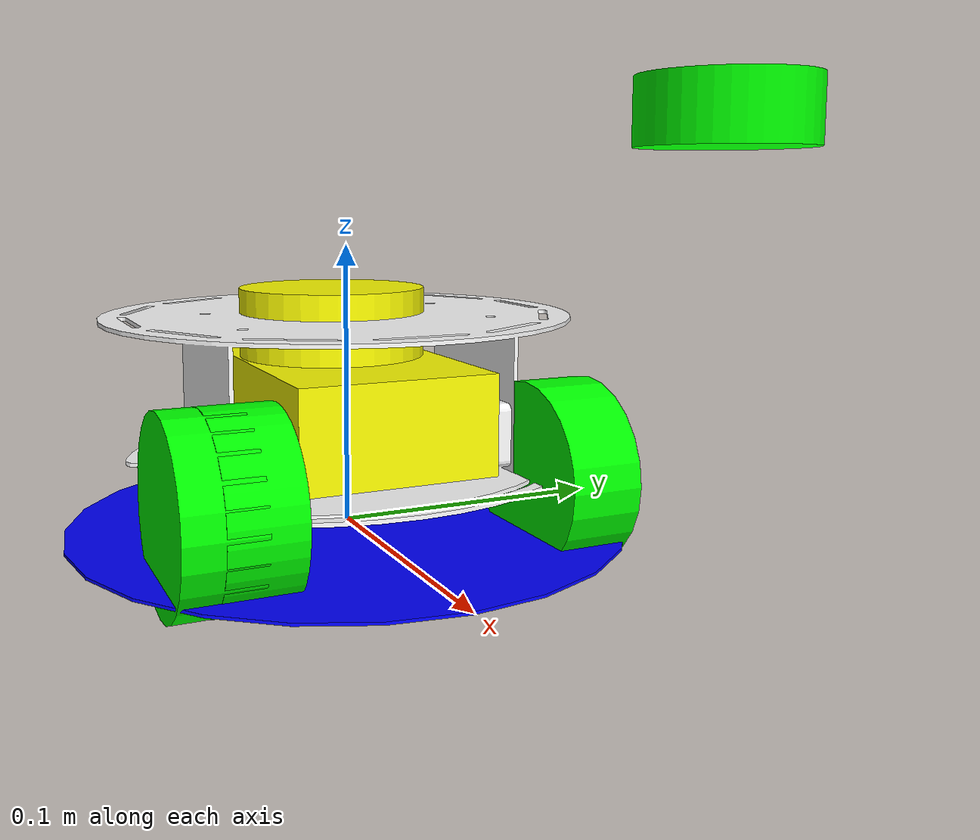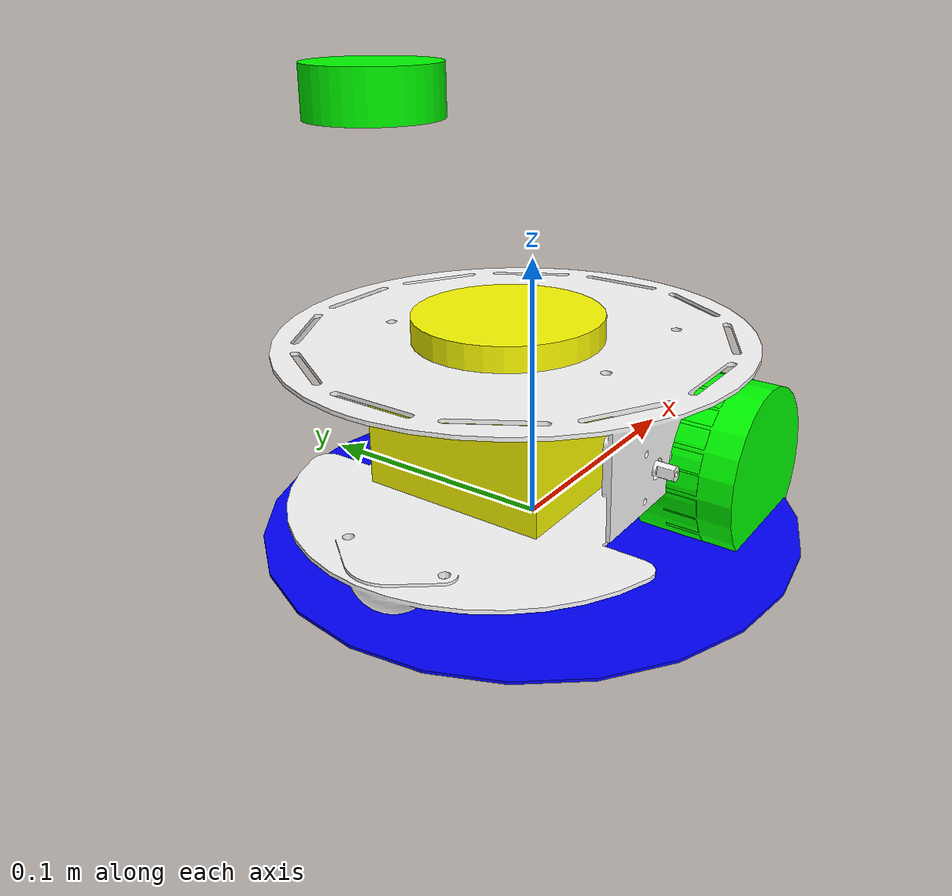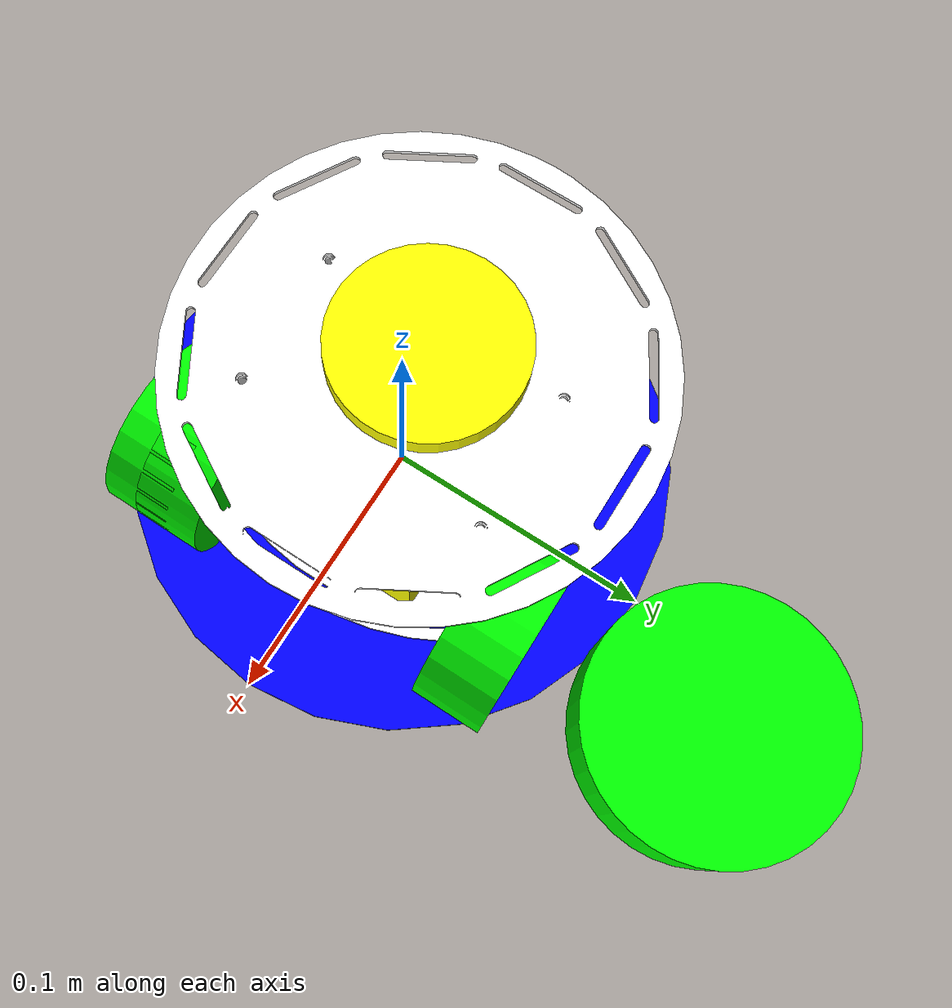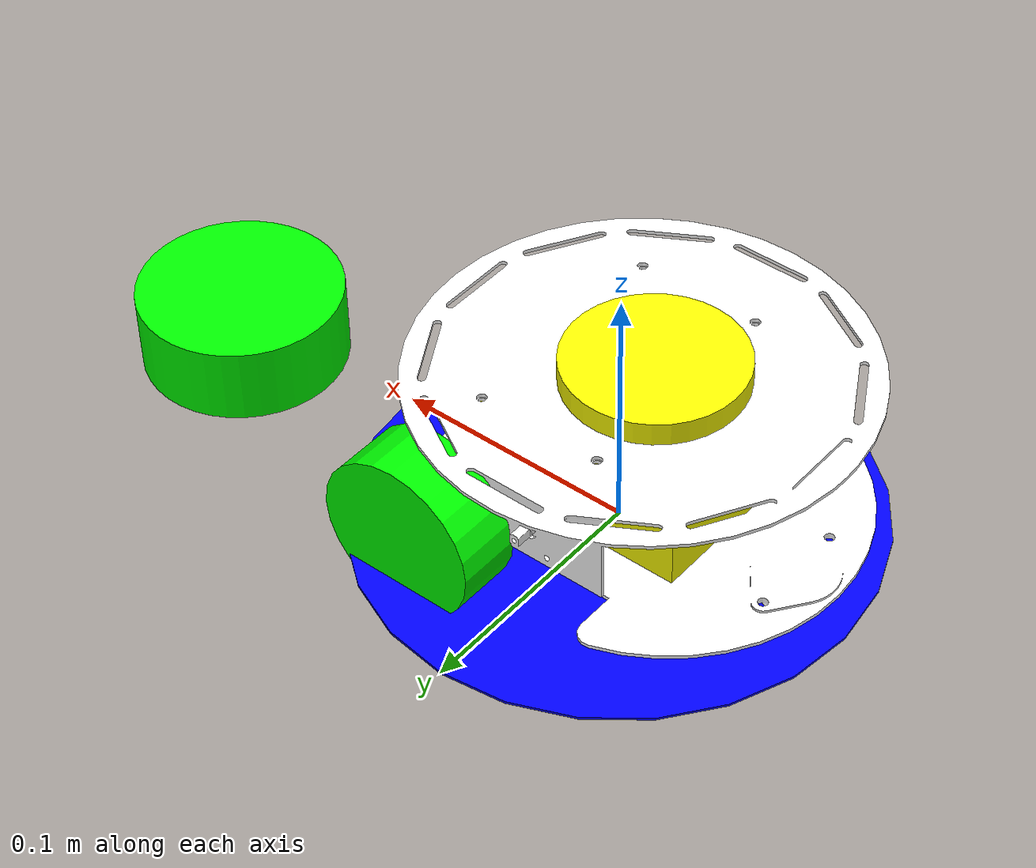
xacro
<?xml version="1.0" encoding="utf-8"?>
<robot
  name="abot"
  	xmlns:xacro="http://www.ros.org/wiki/xacro">
	<!-- Matherials -->
	<xacro:include filename="$(find abot_description)/urdf/abot_materials.xacro" />
	<!-- parameters -->
  <xacro:property name="clearance" value="0.018" />
  <xacro:property name="wheel_radius" value="0.0325"/>
  <xacro:property name="wheel_separation" value="0.135"/>
  <xacro:property name="wheel_width" value="0.026"/>
  <xacro:property name="PI" value="3.1415926"/>
  <!-- abot_base -->
  <link
    name="abot_base">
    <inertial>
      <origin
        xyz="3.52930394689292E-18 4.62395285906123E-18 0.0015"
        rpy="0 0 0" />
      <mass
        value="0.468000000000001" />
      <inertia
        ixx="0.000390351"
        ixy="5.37237652524249E-37"
        ixz="1.82117501628044E-35"
        iyy="0.00195"
        iyz="0"
        izz="0.001560351" />
    </inertial>
    <visual>
      <origin
        xyz="0 0 0"
        rpy="0 0 0" />
      <geometry>
        <mesh
          filename="package://abot_description/meshes/abot_base.STL" />
      </geometry>
      <material
        name="White">
      </material>
    </visual>
    <collision>
      <origin
        xyz="0 0 0"
        rpy="0 0 0" />
      <geometry>
        <mesh
          filename="package://abot_description/meshes/abot_base.STL" />
      </geometry>
    </collision>
  </link>
  <!-- base_link -->
<link name="base_link">
	<visual>
		<origin xyz="0 0 0" rpy="0 0 0" />
		<geometry>
			<sphere radius="0.001" />
		</geometry>
	</visual>
</link>
<joint name="base_link_to_abot_base" type="fixed">
	<origin xyz="0 0 0" rpy="0 0 0" />
	<parent link="base_link" />
	<child link="abot_base" />
</joint>
<!-- base_footprint -->
<link name="base_footprint">
	<visual>
		<origin xyz="0 0 0" rpy="0 0 0" />
		<geometry>
			<cylinder length="0.001" radius="0.100" />
		</geometry>
		<material name="Blue" />
	</visual>
</link>
<joint name="base_footprint_to_base_link" type="fixed">
	<origin xyz="0 0 ${clearance}" rpy="0 0 0" />
	<parent link="base_footprint" />
	<child link="base_link" />
</joint>
<!-- Wheels -->
<xacro:include filename="$(find abot_description)/urdf/abot_left_wheel.xacro" />
<xacro:include filename="$(find abot_description)/urdf/abot_right_wheel.xacro" />
<!-- Sensors -->
<xacro:include filename="$(find abot_description)/urdf/abot_sensors.xacro" />
</robot>

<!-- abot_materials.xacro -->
<robot
	xmlns:xacro="http://www.ros.org/wiki/xacro">
	<material name="Green">
		<color rgba="0.0 1.0 0.0 1.0"/>
	</material>
	<material name="Blue">
		<color rgba="0.0 0.0 1.0 1.0"/>
	</material>
	<material name="Red">
		<color rgba="1.0 0.0 0.0 1.0"/>
	</material>
	<material name="White">
		<color rgba="1.0 1.0 1.0 1.0"/>
	</material>
	<material name="Yellow">
		<color rgba="1.0 1.0 0.0 1.0"/>
	</material>
</robot>

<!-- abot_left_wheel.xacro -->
<robot
  name="abot"
  	xmlns:xacro="http://www.ros.org/wiki/xacro">
  <link
    name="abot_left_wheel">
    <inertial>
      <origin
        xyz="1.73472347597681E-18 6.93889390390723E-18 0.0125"
        rpy="0 0 0" />
      <mass
        value="0.647069911869073" />
      <inertia
        ixx="0.000204568456512775"
        ixy="8.74462853802416E-37"
        ixz="4.83859844563354E-36"
        iyy="0.000204568456512774"
        iyz="0"
        izz="0.000341733797205854" />
    </inertial>
    <visual>
      <origin
        xyz="0 0 0"
        rpy="0 0 0" />
      <geometry>
        <mesh
          filename="package://abot_description/meshes/abot_left_wheel.STL" />
      </geometry>
      <material
        name="Green">
      </material>
    </visual>
    <collision>
      <origin
        xyz="0 0 0"
        rpy="0 0 0" />
      <geometry>
        <mesh
          filename="package://abot_description/meshes/abot_left_wheel.STL" />
      </geometry>
    </collision>
  </link>

  <link name="left_wheel">
	<visual>
		<origin xyz="0 0 0" rpy="${PI/2} 0 0" />
		<geometry>
			<cylinder length="${wheel_width}" radius="${wheel_radius}"/>
		</geometry>
		<material name="Green" />
	</visual>
	<collision>
		<origin xyz="0 0 0" rpy="${PI/2} 0 0" />
		<geometry>
			<cylinder length="${wheel_width}" radius="${wheel_radius}"/>
		</geometry>
	</collision>
</link>
<joint name="left_wheel_to_abot_left_wheel" type="fixed">
	<origin xyz="0 0 0" rpy="0 0 0" />
	<parent link="left_wheel" />
	<child link="abot_left_wheel" />
</joint>
<joint name="left_wheel_to_base" type="continuous">
	<origin xyz="0.04 0.0638 0.00299999999999998" rpy="0 0 0" />
	<parent link="abot_base" />
	<child link="left_wheel" />
	<axis xyz="0 1 0" />
</joint>
</robot>

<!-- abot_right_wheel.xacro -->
<robot
  name="abot"
  	xmlns:xacro="http://www.ros.org/wiki/xacro">
  <link
    name="abot_right_wheel">
    <inertial>
      <origin
        xyz="1.73472347597681E-18 6.93889390390723E-18 0.0125"
        rpy="0 0 0" />
      <mass
        value="0.647069911869073" />
      <inertia
        ixx="0.000204568456512775"
        ixy="8.74462853802417E-37"
        ixz="-6.40186763099391E-37"
        iyy="0.000204568456512775"
        iyz="2.29221398410346E-36"
        izz="0.000341733797205854" />
    </inertial>
    <visual>
      <origin
        xyz="0 0 0"
        rpy="0 0 0" />
      <geometry>
        <mesh
          filename="package://abot_description/meshes/abot_right_wheel.STL" />
      </geometry>
      <material
        name="Green">
      </material>
    </visual>
    <collision>
      <origin
        xyz="0 0 0"
        rpy="0 0 0" />
      <geometry>
        <mesh
          filename="package://abot_description/meshes/abot_right_wheel.STL" />
      </geometry>
    </collision>
  </link>

  <link name="right_wheel">
	<visual>
		<origin xyz="0 0 0" rpy="${PI/2} 0 0" />
		<geometry>
			<cylinder length="${wheel_width}" radius="${wheel_radius}"/>
		</geometry>
		<material name="Green" />
	</visual>
	<collision>
		<origin xyz="0 0 0" rpy="${PI/2} 0 0" />
		<geometry>
			<cylinder length="${wheel_width}" radius="${wheel_radius}"/>
		</geometry>
	</collision>
</link>
<joint name="right_wheel_to_abot_right_wheel" type="fixed">
	<origin xyz="0 0 0" rpy="0 0 0" />
	<parent link="right_wheel" />
	<child link="abot_right_wheel" />
</joint>
<joint name="right_wheel_to_base" type="continuous">
	<origin xyz="0.04 -0.0638 0.00300000000000001" rpy="0 0 0" />
	<parent link="abot_base" />
	<child link="right_wheel" />
	<axis xyz="0 1 0" />
</joint>
</robot>

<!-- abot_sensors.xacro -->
<robot
  name="abot"
  	xmlns:xacro="http://www.ros.org/wiki/xacro">
  <link
    name="abot_lidar">
    <inertial>
      <origin
        xyz="-0.00405572587504531 -1.00899709035313E-18 0.0256114517500906"
        rpy="0 0 0" />
      <mass
        value="2.61917781597221" />
      <inertia
        ixx="0.00168198342889722"
        ixy="1.2058020378595E-20"
        ixz="0.000232514764416348"
        iyy="0.00261041581110539"
        iyz="-2.56645228638893E-20"
        izz="0.00289840915984011" />
    </inertial>
    <visual>
      <origin
        xyz="0 0 0"
        rpy="0 0 0" />
      <geometry>
        <mesh
          filename="package://abot_description/meshes/abot_lidar.STL" />
      </geometry>
      <material
        name="Yellow">
      </material>
    </visual>
    <collision>
      <origin
        xyz="0 0 0"
        rpy="0 0 0" />
      <geometry>
        <mesh
          filename="package://abot_description/meshes/abot_lidar.STL" />
      </geometry>
    </collision>
  </link>
  <joint
    name="lidar_to_base"
    type="fixed">
    <origin
      xyz="0 0 0.003"
      rpy="0 0 0" />
    <parent
      link="abot_base" />
    <child
      link="abot_lidar" />
    <axis
      xyz="0 0 1" />
  </joint>
  </robot>
